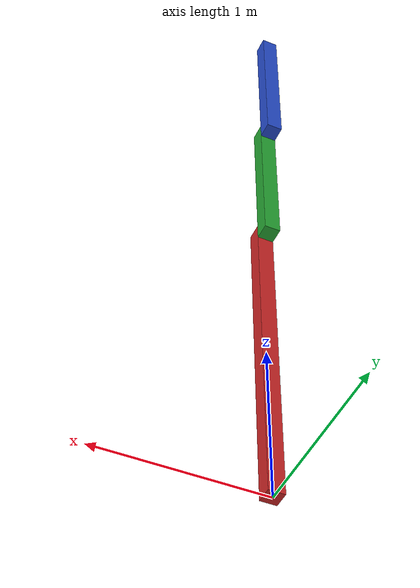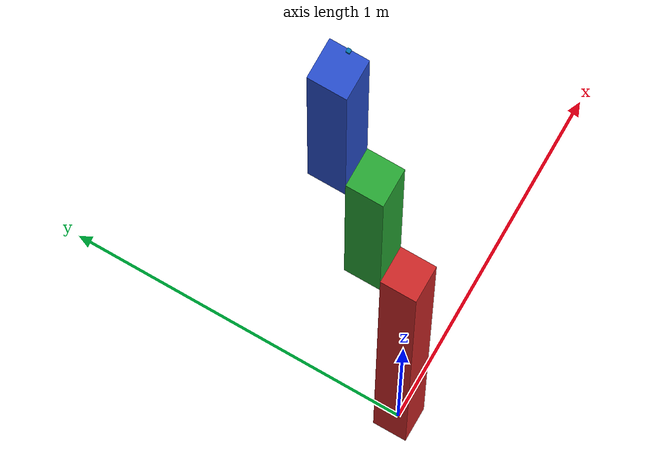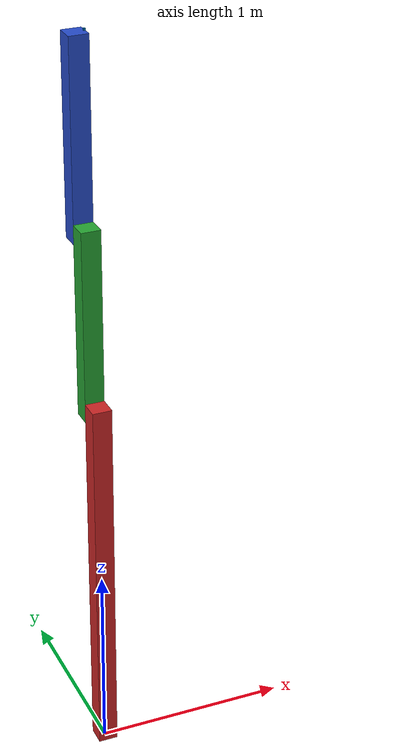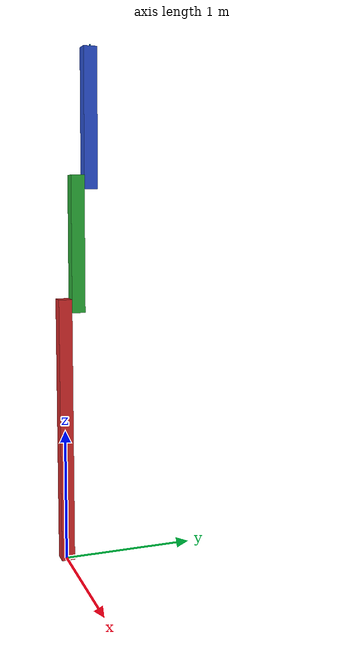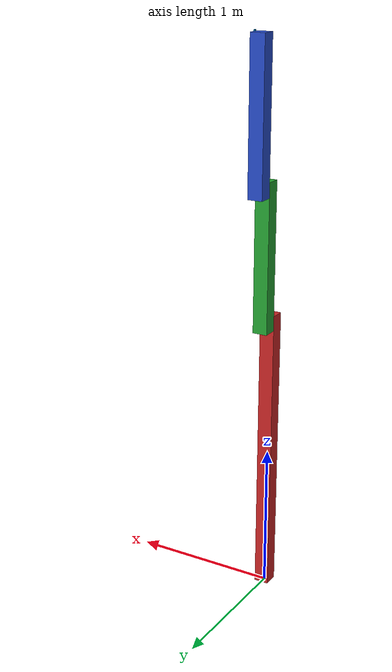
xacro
<?xml version="1.0"?>
<!-- Revolute-Revolute Manipulator -->
<robot name="rrbot" xmlns:xacro="http://www.ros.org/wiki/xacro">

  <!-- Constants for robot dimensions -->
  <xacro:property name="width" value="0.1" />   <!-- Beams are square in length and width -->
  <xacro:property name="height1" value="2" />   <!-- Link 1 -->
  <xacro:property name="height2" value="1" />   <!-- Link 2 -->
  <xacro:property name="height3" value="1" />   <!-- Link 3 -->
  <xacro:property name="axle_offset" value="0.05" /> <!-- Space between joint and end of beam -->
  <xacro:property name="damp" value="0.7" />    <!-- damping coefficient -->

  <!-- Default Inertial -->
  <xacro:macro name="default_inertial" params="z_value i_value mass">
    <inertial>
      <origin xyz="0 0 ${z_value}" rpy="0 0 0"/>
      <mass value="${mass}" />
      <inertia ixx="${i_value}" ixy="0.0" ixz="0.0"
               iyy="${i_value}" iyz="0.0"
               izz="${i_value}" />
      </inertial>
  </xacro:macro>

  <!-- Import Rviz colors -->
  <xacro:include filename="$(find ros_robotics)/urdf/materials.xacro" />

  <!-- Import Gazebo elements, including Gazebo colors -->
  <xacro:include filename="$(find ros_robotics)/urdf/rrbot.gazebo" />

  <!-- Used for fixing rrbot frame to Gazebo world frame -->
  <link name="world"/>

  <joint name="fixed" type="fixed">
    <parent link="world"/>
    <child link="base_link"/>
  </joint>

  <!-- Base Link -->
  <link name="base_link">
    <visual>
      <origin xyz="0 0 ${height1/2}" rpy="0 0 0"/>
      <geometry>
	<box size="${width} ${width} ${height1}"/>
      </geometry>
      <material name="red"/>
    </visual>

    <collision>
      <origin xyz="0 0 ${height1/2}" rpy="0 0 0"/>
      <geometry>
	<box size="${width} ${width} ${height1}"/>
      </geometry>
    </collision>

    <xacro:default_inertial z_value="${height1/2}" i_value="1.0" mass="1"/>
  </link>

  <!-- Joint between Base Link and Middle Link -->
  <joint name="joint_base_mid" type="revolute">
    <parent link="base_link"/>
    <child link="mid_link"/>
    <origin xyz="0 ${width} ${height1 - axle_offset}" rpy="1.57 0 0"/>
    <axis xyz="0 0 1"/>
    <dynamics damping="${damp}"/>
    <limit effort="100.0" velocity="0.5" lower="-3.14" upper="3.14" />
  </joint>

  <!-- Middle Link -->
  <link name="mid_link">
    <visual>
      <origin xyz="0 ${height2/2 - axle_offset} 0" rpy="1.57 0 0"/>
      <geometry>
	<box size="${width} ${width} ${height2}"/>
      </geometry>
      <material name="green"/>
    </visual>

    <collision>
      <origin xyz="0 ${height2/2 - axle_offset} 0" rpy="1.57 0 0"/>
      <geometry>
	<box size="${width} ${width} ${height2}"/>
      </geometry>
    </collision>

    <xacro:default_inertial z_value="${height2/2 - axle_offset}" i_value="1.0" mass="1"/>
  </link>

  <!-- Joint between Middle Link and Top Link -->
  <joint name="joint_mid_top" type="revolute">
    <parent link="mid_link"/>
    <child link="top_link"/>
    <origin xyz="0 ${height2 - axle_offset*2} -${width}" rpy="0 0 0"/>
    <axis xyz="0 0 1"/>
    <dynamics damping="${damp}"/>
    <limit effort="100.0" velocity="0.5" lower="-3.14" upper="3.14" />
  </joint>

  <!-- Top Link -->
  <link name="top_link">
    <visual>
      <origin xyz="0 ${height3/2 - axle_offset} 0" rpy="1.57 0 0"/>
      <geometry>
	<box size="${width} ${width} ${height3}"/>
      </geometry>
      <material name="blue"/>
    </visual>

    <collision>
      <origin xyz="0 ${height3/2 - axle_offset} 0" rpy="1.57 0 0"/>
      <geometry>
	<box size="${width} ${width} ${height3}"/>
      </geometry>
    </collision>

    <xacro:default_inertial z_value="${height3/2 - axle_offset}" i_value="1.0" mass="1"/>
  </link>

  <joint name="sonar_front_joint" type="fixed">
    <axis xyz="0 1 0" />
    <origin rpy="0 0 0" xyz="0.045 0.955 0" />
    <parent link="top_link"/>
    <child link="base_sonar_front"/>
  </joint>

  <link name="base_sonar_front">
   <collision>
     <origin xyz="0 0 0" rpy="0 0 0"/>
     <geometry>
       <box size="0.01 0.01 0.01"/>
     </geometry>
   </collision>
   <visual>
     <origin xyz="0 0 0" rpy="0 0 0"/>
     <geometry>
       <box size="0.01 0.01 0.01"/>
     </geometry>
   </visual>
   <inertial>
     <mass value="1e-5" />
     <origin xyz="0 0 0" rpy="0 0 0"/>
     <inertia ixx="1e-6" ixy="0" ixz="0" iyy="1e-6" iyz="0" izz="1e-6" />
   </inertial>
  </link>

  <gazebo reference="base_sonar_front">
     <sensor type="ray" name="TeraRanger">
        <pose>0 0 0 0 0 0</pose>
        <visualize>true</visualize>
        <update_rate>50</update_rate>
        <ray>
           <scan>
              <horizontal>
                 <samples>10</samples>
                 <resolution>1</resolution>
                 <min_angle>-0.14835</min_angle>
                 <max_angle>0.14835</max_angle>
              </horizontal>
              <vertical>
                 <samples>10</samples>
                 <resolution>1</resolution>
                 <min_angle>-0.14835</min_angle>
                 <max_angle>0.14835</max_angle>
              </vertical>
           </scan>
           <range>
              <min>0.01</min>
              <max>2</max>
              <resolution>0.02</resolution>
           </range>
        </ray>
        <plugin filename="libgazebo_ros_range.so" name="gazebo_ros_range">
           <gaussianNoise>0.005</gaussianNoise>
           <alwaysOn>true</alwaysOn>
           <updateRate>50</updateRate>
           <topicName>sensor/sonar_front</topicName>
           <frameName>base_sonar_front</frameName>
           <radiation>INFRARED</radiation>
           <fov>0.2967</fov>
        </plugin>
     </sensor>
  </gazebo>

  <transmission name="transmission1">
    <type>transmission_interface/SimpleTransmission</type>
    <joint name="joint_base_mid">
      <hardwareInterface>hardware_interface/EffortJointInterface</hardwareInterface>
    </joint>
    <actuator name="motor1">
      <mechanicalReduction>1</mechanicalReduction>
    </actuator>
  </transmission>

  <transmission name="transmission2">
    <type>transmission_interface/SimpleTransmission</type>
    <joint name="joint_mid_top">
      <hardwareInterface>hardware_interface/EffortJointInterface</hardwareInterface>
    </joint>
    <actuator name="motor2">
      <mechanicalReduction>1</mechanicalReduction>
    </actuator>
  </transmission>

</robot>
